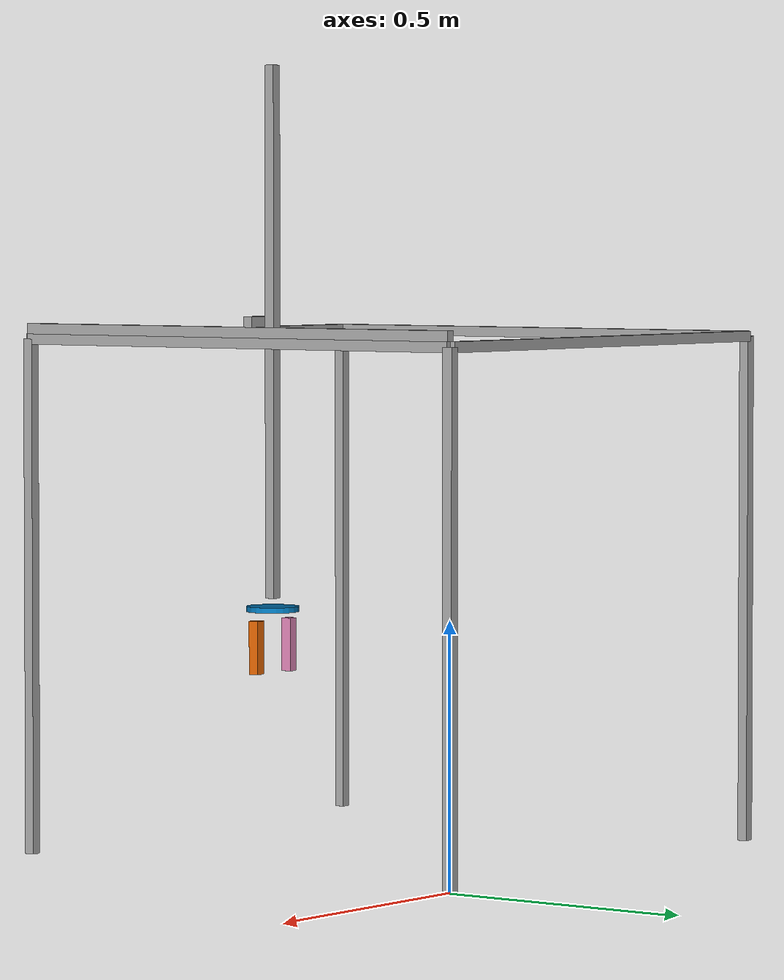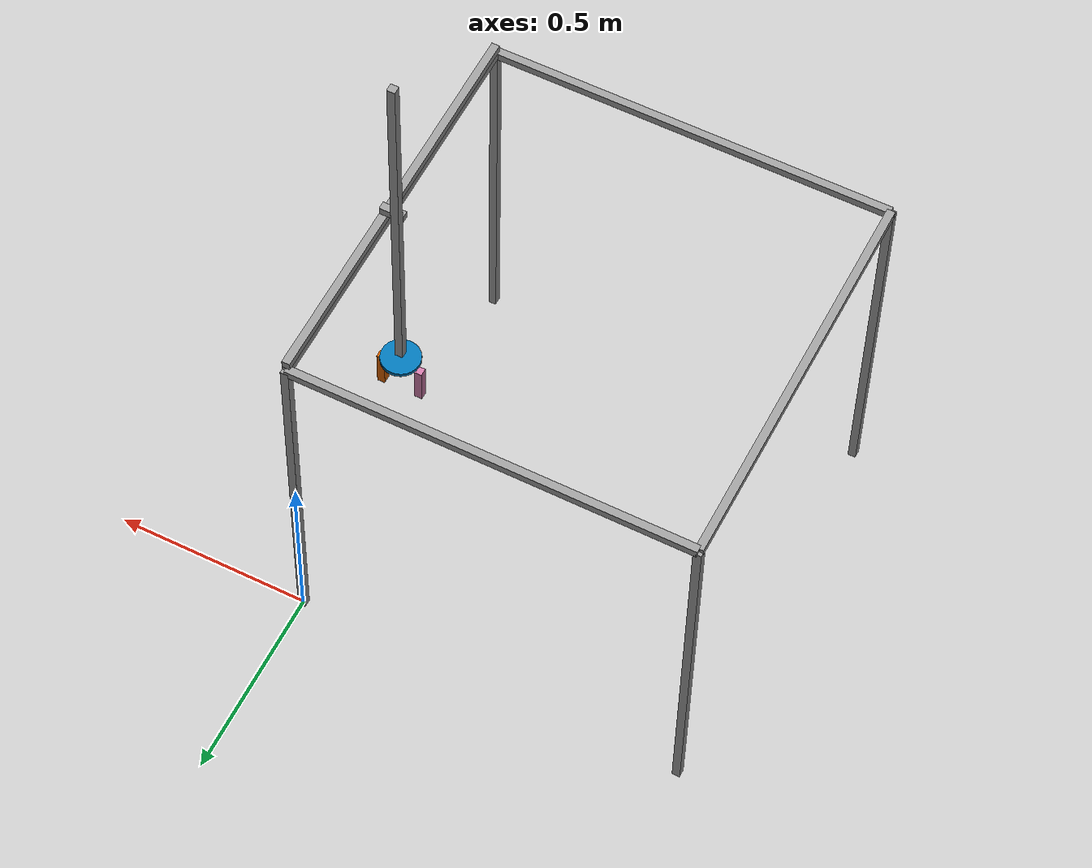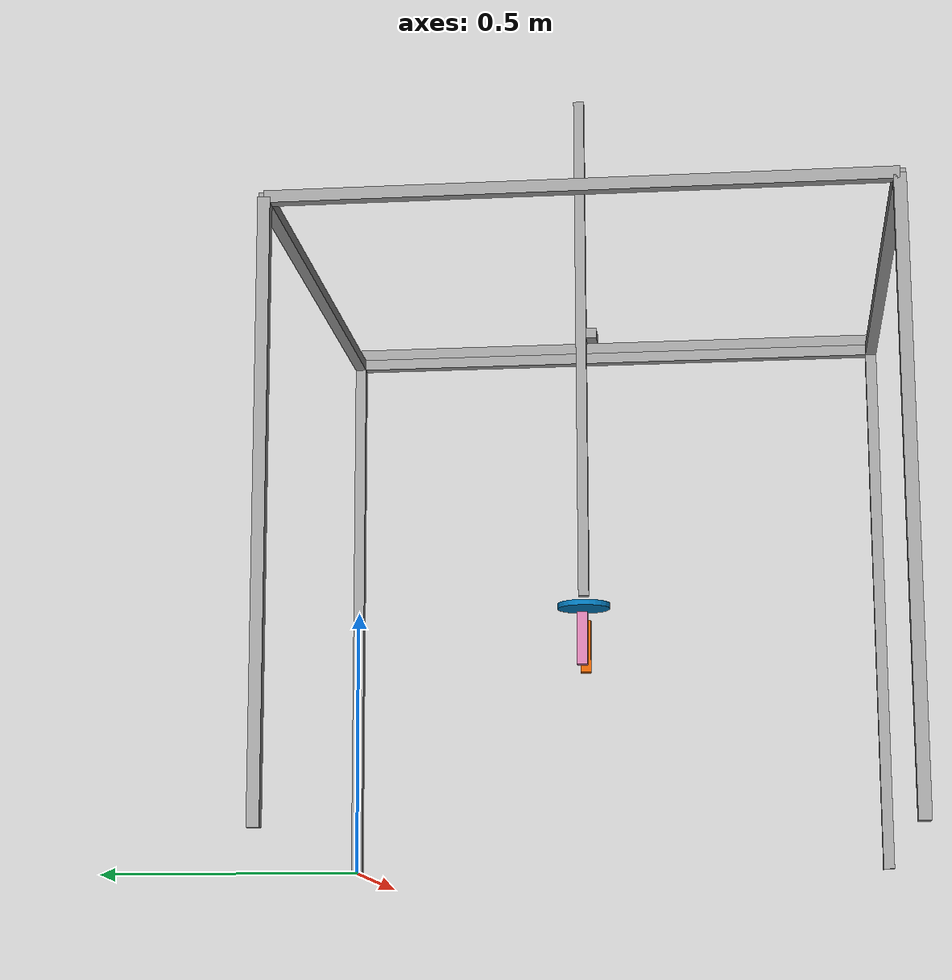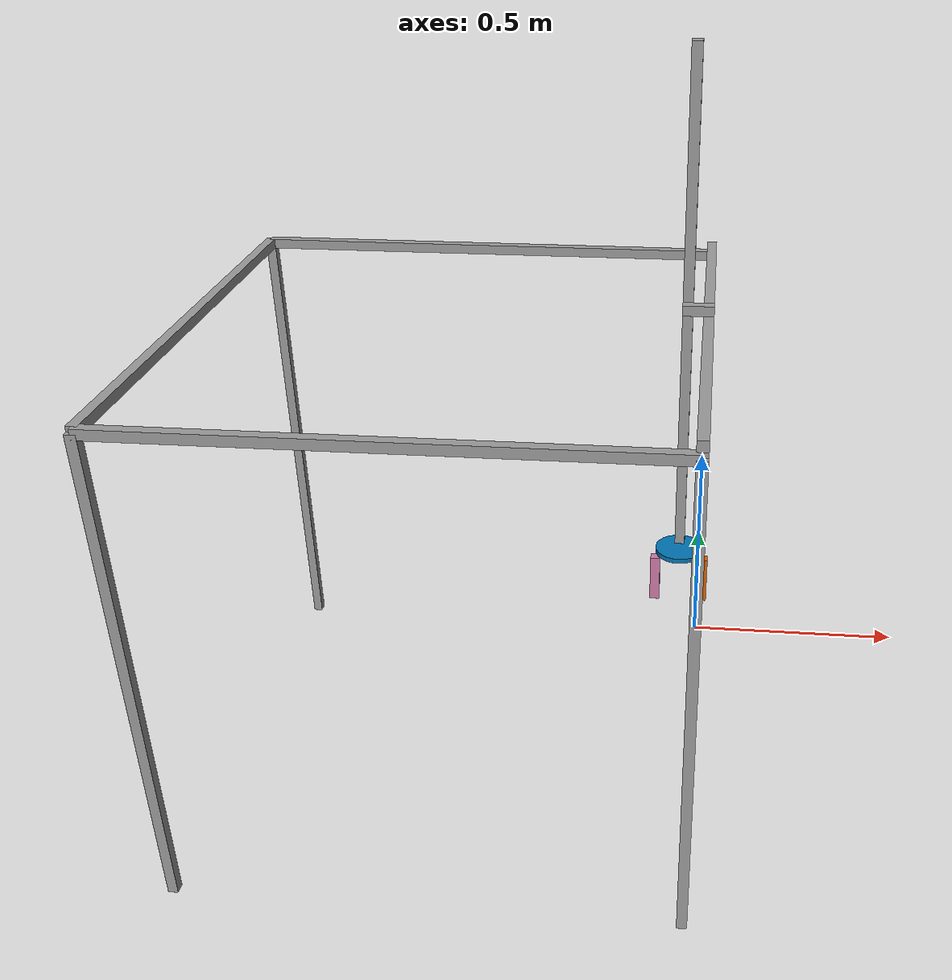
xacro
<?xml version="1.0"?>
<robot xmlns:xacro="http://www.ros.org/wiki/xacro" name="rectangular_gantry">

  <xacro:include filename="$(find gantry2)/urdf/bars.xacro" />
  <xacro:include filename="$(find gantry2)/urdf/ee1.xacro" />
  <xacro:include filename="$(find gantry2)/urdf/ros2_control.xacro" />

</robot>

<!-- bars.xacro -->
<robot xmlns:xacro="http://www.ros.org/wiki/xacro">
  <xacro:property name="length_bar" value="1" />    <!-- travel along X (m) -->
  <xacro:property name="thickness_bar" value="0.02" />    <!-- travel along X (m) -->
  <xacro:property name="width_bar" value="0.02" />    <!-- travel along X (m) -->
  <xacro:property name="mass_bar" value="30" />    <!-- weight (kg) -->

  <!-- Macro for a bar -->
  <xacro:macro name="bar" params="name length width thickness">
    <link name="${name}">
      <visual>
        <origin xyz="0 0 0" rpy="0 0 0" />
        <geometry>
          <box size="${length} ${width} ${thickness}" />
        </geometry>
        <material name="gray">
          <color rgba="0.6 0.6 0.6 1.0" />
        </material>
      </visual>
      <collision>
        <origin xyz="0 0 0" rpy="0 0 0" />
        <geometry>
          <box size="${length} ${width} ${thickness}" />
        </geometry>
      </collision>
      <inertial>
        <origin xyz="0 0 0" rpy="0 0 0" />
        <mass value="${mass_bar}" />
        <inertia ixx="1.0" ixy="0" ixz="0" iyy="1.0" iyz="0" izz="1.0" />
      </inertial>
    </link>
  </xacro:macro>

  <!-- Macro for a fixed joint -->
  <xacro:macro name="fixed_joint" params="parent child xyz rpy">
    <joint name="${parent}_to_${child}" type="fixed">
      <parent link="${parent}" />
      <child link="${child}" />
      <origin xyz="${xyz}" rpy="${rpy}" />
    </joint>
  </xacro:macro>

  <xacro:macro name="prismatic_joint" params="parent child xyz rpy axis lower upper">
    <joint name="${parent}_to_${child}" type="prismatic">
      <parent link="${parent}" />
      <child link="${child}" />
      <origin xyz="${xyz}" rpy="${rpy}" />
      <axis xyz="${axis}" />
      <limit lower="${lower}" upper="${upper}" effort="100" velocity="1.0" />
    </joint>
  </xacro:macro>

  <!-- Base link -->
  <link name="map" />

  <!-- Bars + joints -->
  <xacro:bar name="leg1" length="${length_bar}" width="${width_bar}" thickness="${thickness_bar}" />
  <xacro:fixed_joint parent="map" child="leg1" xyz="0 0 ${length_bar/2}" rpy="0 -${pi/2} 0" />

  <xacro:bar name="leg2" length="${length_bar}" width="${width_bar}" thickness="${thickness_bar}" />
  <xacro:fixed_joint parent="map" child="leg2" xyz="-${length_bar} 0 ${length_bar/2}"
    rpy="0 -${pi/2} 0" />

  <xacro:bar name="layer1" length="${length_bar}" width="${width_bar}" thickness="${thickness_bar}" />
  <xacro:fixed_joint parent="map" child="layer1" xyz="-${length_bar/2} 0 ${length_bar}" rpy="0 0 0" />

  <xacro:bar name="layer2" length="${length_bar}" width="${width_bar}" thickness="${thickness_bar}" />
  <xacro:fixed_joint parent="map" child="layer2" xyz="-${length_bar} -${length_bar/2} ${length_bar}"
    rpy="0 0 -${pi/2}" />

  <xacro:bar name="leg3" length="${length_bar}" width="${width_bar}" thickness="${thickness_bar}" />
  <xacro:fixed_joint parent="map" child="leg3" xyz="-${length_bar} -${length_bar} ${length_bar/2}"
    rpy="0 -${pi/2} 0" />

  <xacro:bar name="layer3" length="${length_bar}" width="${width_bar}" thickness="${thickness_bar}" />
  <xacro:fixed_joint parent="map" child="layer3" xyz="0 -${length_bar/2} ${length_bar}"
    rpy="0 0 -${pi/2}" />

  <xacro:bar name="leg4" length="${length_bar}" width="${width_bar}" thickness="${thickness_bar}" />
  <xacro:fixed_joint parent="map" child="leg4" xyz="0 -${length_bar} ${length_bar/2}"
    rpy="0 -${pi/2} 0" />

  <xacro:bar name="layer4" length="${length_bar}" width="${width_bar}" thickness="${thickness_bar}" />
  <xacro:fixed_joint parent="map" child="layer4" xyz="-${length_bar/2} -${length_bar} ${length_bar}"
    rpy="0 0 0" />

  <xacro:bar name="xaxis" length="${length_bar}" width="${width_bar}" thickness="${thickness_bar}" />
  <xacro:prismatic_joint parent="map" child="xaxis"
    xyz="0 -${length_bar/2} ${length_bar + thickness_bar}"
    rpy="0 0 -${pi/2}"
    axis="0 1 0"
    lower="-${length_bar}" upper="0" />

  <!-- Make the below small the dimensions of ${width_bar} ${width_bar} ${width_bar} -->
  <xacro:bar name="yaxis" length="${width_bar}" width="${width_bar + width_bar + width_bar}"
    thickness="${width_bar}" />
  <xacro:prismatic_joint parent="xaxis" child="yaxis"
    xyz="-${width_bar + width_bar} -${width_bar} ${thickness_bar}"
    rpy="0 -${pi/2} 0"
    axis="0 0 1"
    lower="-${length_bar/2}" upper="${length_bar/2}" />

  <xacro:bar name="zaxis" length="${length_bar}" width="${width_bar}"
    thickness="${thickness_bar}" />
  <xacro:prismatic_joint parent="yaxis" child="zaxis"
    xyz="-${width_bar} -${width_bar} ${width_bar}"
    rpy="0 0 0"
    axis="1 0 0"
    lower="-${length_bar/2}" upper="${length_bar/2}" />

</robot>

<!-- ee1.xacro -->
<robot xmlns:xacro="http://www.ros.org/wiki/xacro">
  <link name="eemount">
    <visual>
      <origin xyz="0 0 0" rpy="0 0 0" />
      <geometry>
        <cylinder length="0.01" radius="0.05" />
      </geometry>
    </visual>

    <collision>
      <origin xyz="0 0 0" rpy="0 0 0" />
      <geometry>
        <cylinder length="0.01" radius="0.05" />
      </geometry>
    </collision>

    <inertial>
      <origin xyz="0 0 0" rpy="0 0 0" />
      <mass value="${mass_bar}" />
      <inertia ixx="1.0" ixy="0" ixz="0" iyy="1.0" iyz="0" izz="1.0" />
    </inertial>
  </link>

  <joint name="zaxis_to_eemount" type="revolute">
    <parent link="zaxis" />
    <child link="eemount" />
    <origin xyz="-${length_bar/2 + width_bar} 0 0" rpy="0 ${pi/2} 0" />
    <axis xyz="0 0 1" />
    <limit lower="-3.57" upper="3.57" effort="5" velocity="1" />
  </joint>

  <!-- Left finger -->
  <link name="left_finger">
    <visual>
      <origin xyz="0 0.05 0" rpy="0 0 0" />
      <geometry>
        <box size="0.02 0.1 0.02" />
      </geometry>
    </visual>
    <collision>
      <origin xyz="0 0.05 0" rpy="0 0 0" />
      <geometry>
        <box size="0.02 0.1 0.02" />
      </geometry>
    </collision>
    <inertial>
      <mass value="0.05" />
      <inertia ixx="0.0001" iyy="0.0001" izz="0.0001" ixy="0" ixz="0" iyz="0" />
    </inertial>
  </link>

  <!-- Right finger -->
  <link name="right_finger">
    <visual>
      <origin xyz="0 -0.05 0" rpy="0 0 0" />
      <geometry>
        <box size="0.02 0.1 0.02" />
      </geometry>
    </visual>
    <collision>
      <origin xyz="0 -0.05 0" rpy="0 0 0" />
      <geometry>
        <box size="0.02 0.1 0.02" />
      </geometry>
    </collision>
    <inertial>
      <mass value="0.05" />
      <inertia ixx="0.0001" iyy="0.0001" izz="0.0001" ixy="0" ixz="0" iyz="0" />
    </inertial>
  </link>

  <!-- Left prismatic joint -->
  <joint name="gripper_left_joint" type="prismatic">
    <parent link="eemount" />
    <child link="left_finger" />
    <origin xyz="0 0.05 -0.12" rpy="${pi/2} 0 0" />
    <axis xyz="0 0 -1" /> <!-- slides along +Y -->
    <limit lower="0.0" upper="0.08" effort="10" velocity="0.1" />
  </joint>

  <!-- Right prismatic joint (mimics left) -->
  <joint name="gripper_right_joint" type="prismatic">
    <parent link="eemount" />
    <child link="right_finger" />
    <origin xyz="0 -0.05 -0.02" rpy="${pi/2} 0 0" />
    <axis xyz="0 0 1" /> <!-- slides along -Y -->
    <limit lower="0.0" upper="0.08" effort="10" velocity="0.1" />
    <mimic joint="gripper_left_joint" multiplier="1" offset="0" />
  </joint>

</robot>
